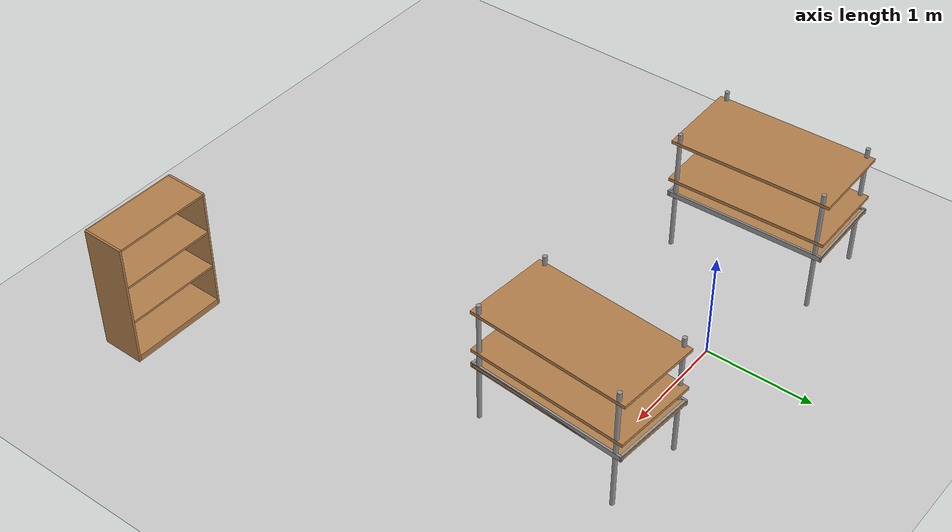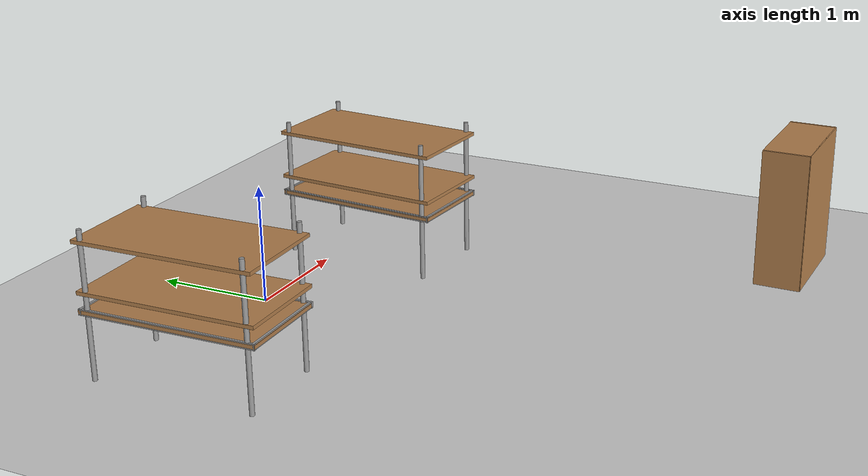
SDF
<sdf version="1.7">
 <world name="default">
  <model name="ground_plane">
   <static>1</static>
   <link name="link">
    <collision name="collision">
     <geometry><plane><normal>0 0 1</normal><size>100 100</size></plane></geometry>
     <surface><friction><ode><mu>100</mu><mu2>50</mu2></ode></friction></surface>
    </collision>
    <visual name="visual">
     <cast_shadows>0</cast_shadows>
     <geometry><plane><normal>0 0 1</normal><size>100 100</size></plane></geometry>
     <material>
      <script><uri>file://media/materials/scripts/gazebo.material</uri><name>Gazebo/Grey</name></script>
     </material>
    </visual>
   </link>
  </model>
  <model name="warehouse_pallet_clone_0">
   <link name="warehouse_pallet::link">
    <pose>0 0 -0 0 -0 1.57</pose>
    <inertial>
     <inertia>
      <ixx>0.0267042</ixx>
      <ixy>0</ixy>
      <ixz>0</ixz>
      <iyy>0.0937875</iyy>
      <iyz>0</iyz>
      <izz>0.120417</izz>
     </inertia>
     <mass>0.5</mass>
    </inertial>
    <visual name="holding1_visual">
     <pose>0 0.39 0.45 0 -0 0</pose>
     <geometry><box><size>1.5 0.02 0.05</size></box></geometry>
     <material>
      <script><uri>file://media/materials/scripts/gazebo.material</uri><name>Gazebo/Grey</name></script>
      <shader type="pixel"><normal_map>__default__</normal_map></shader>
      <ambient>0.3 0.3 0.3 1</ambient>
      <diffuse>0.7 0.7 0.7 1</diffuse>
      <specular>0.01 0.01 0.01 1</specular>
      <emissive>0 0 0 1</emissive>
     </material>
    </visual>
    <visual name="front_left_leg">
     <pose>0.68 0.38 0.5 0 -0 0</pose>
     <geometry><cylinder><radius>0.02</radius><length>1.2</length></cylinder></geometry>
     <material>
      <script><uri>file://media/materials/scripts/gazebo.material</uri><name>Gazebo/Grey</name></script>
      <shader type="pixel"><normal_map>__default__</normal_map></shader>
      <ambient>0.3 0.3 0.3 1</ambient>
      <diffuse>0.7 0.7 0.7 1</diffuse>
      <specular>0.01 0.01 0.01 1</specular>
      <emissive>0 0 0 1</emissive>
     </material>
    </visual>
    <visual name="front_right_leg">
     <pose>0.68 -0.38 0.5 0 -0 0</pose>
     <geometry><cylinder><radius>0.02</radius><length>1.2</length></cylinder></geometry>
     <material>
      <script><uri>file://media/materials/scripts/gazebo.material</uri><name>Gazebo/Grey</name></script>
      <shader type="pixel"><normal_map>__default__</normal_map></shader>
      <ambient>0.3 0.3 0.3 1</ambient>
      <diffuse>0.7 0.7 0.7 1</diffuse>
      <specular>0.01 0.01 0.01 1</specular>
      <emissive>0 0 0 1</emissive>
     </material>
    </visual>
    <visual name="back_right_leg">
     <pose>-0.68 -0.38 0.5 0 -0 0</pose>
     <geometry><cylinder><radius>0.02</radius><length>1.2</length></cylinder></geometry>
     <material>
      <script><uri>file://media/materials/scripts/gazebo.material</uri><name>Gazebo/Grey</name></script>
      <shader type="pixel"><normal_map>__default__</normal_map></shader>
      <ambient>0.3 0.3 0.3 1</ambient>
      <diffuse>0.7 0.7 0.7 1</diffuse>
      <specular>0.01 0.01 0.01 1</specular>
      <emissive>0 0 0 1</emissive>
     </material>
    </visual>
    <visual name="back_left_leg">
     <pose>-0.68 0.38 0.5 0 -0 0</pose>
     <geometry><cylinder><radius>0.02</radius><length>1.2</length></cylinder></geometry>
     <material>
      <script><uri>file://media/materials/scripts/gazebo.material</uri><name>Gazebo/Grey</name></script>
      <shader type="pixel"><normal_map>__default__</normal_map></shader>
      <ambient>0.3 0.3 0.3 1</ambient>
      <diffuse>0.7 0.7 0.7 1</diffuse>
      <specular>0.01 0.01 0.01 1</specular>
      <emissive>0 0 0 1</emissive>
     </material>
    </visual>
    <visual name="visual1">
     <pose>0 0 0.45 0 -0 0</pose>
     <geometry><box><size>1.5 0.8 0.03</size></box></geometry>
     <material>
      <script><uri>file://media/materials/scripts/gazebo.material</uri><name>Gazebo/Wood</name></script>
      <shader type="pixel"><normal_map>__default__</normal_map></shader>
      <ambient>1 1 1 1</ambient>
      <diffuse>1 1 1 1</diffuse>
      <specular>0.2 0.2 0.2 1</specular>
      <emissive>0 0 0 1</emissive>
     </material>
    </visual>
    <visual name="holding2_visual">
     <pose>0 -0.39 0.45 0 -0 0</pose>
     <geometry><box><size>1.5 0.02 0.05</size></box></geometry>
     <material>
      <script><uri>file://media/materials/scripts/gazebo.material</uri><name>Gazebo/Grey</name></script>
      <shader type="pixel"><normal_map>__default__</normal_map></shader>
      <ambient>0.3 0.3 0.3 1</ambient>
      <diffuse>0.7 0.7 0.7 1</diffuse>
      <specular>0.01 0.01 0.01 1</specular>
      <emissive>0 0 0 1</emissive>
     </material>
    </visual>
    <visual name="holding3_visual">
     <pose>0.735 0 0.45 0 -0 1.57</pose>
     <geometry><box><size>0.8 0.02 0.05</size></box></geometry>
     <material>
      <script><uri>file://media/materials/scripts/gazebo.material</uri><name>Gazebo/Grey</name></script>
      <shader type="pixel"><normal_map>__default__</normal_map></shader>
      <ambient>0.3 0.3 0.3 1</ambient>
      <diffuse>0.7 0.7 0.7 1</diffuse>
      <specular>0.01 0.01 0.01 1</specular>
      <emissive>0 0 0 1</emissive>
     </material>
    </visual>
    <visual name="holding4_visual">
     <pose>-0.735 0 0.45 0 -0 1.57</pose>
     <geometry><box><size>0.8 0.02 0.05</size></box></geometry>
     <material>
      <script><uri>file://media/materials/scripts/gazebo.material</uri><name>Gazebo/Grey</name></script>
      <shader type="pixel"><normal_map>__default__</normal_map></shader>
      <ambient>0.3 0.3 0.3 1</ambient>
      <diffuse>0.7 0.7 0.7 1</diffuse>
      <specular>0.01 0.01 0.01 1</specular>
      <emissive>0 0 0 1</emissive>
     </material>
    </visual>
    <visual name="visual2">
     <pose>0 0 0.6 0 -0 0</pose>
     <geometry><box><size>1.5 0.8 0.03</size></box></geometry>
     <material>
      <script><uri>file://media/materials/scripts/gazebo.material</uri><name>Gazebo/Wood</name></script>
      <shader type="pixel"><normal_map>__default__</normal_map></shader>
      <ambient>1 1 1 1</ambient>
      <diffuse>1 1 1 1</diffuse>
      <specular>0.2 0.2 0.2 1</specular>
      <emissive>0 0 0 1</emissive>
     </material>
    </visual>
    <visual name="visual3">
     <pose>0 0 1 0 -0 0</pose>
     <geometry><box><size>1.5 0.8 0.03</size></box></geometry>
     <material>
      <script><uri>file://media/materials/scripts/gazebo.material</uri><name>Gazebo/Wood</name></script>
      <shader type="pixel"><normal_map>__default__</normal_map></shader>
      <ambient>1 1 1 1</ambient>
      <diffuse>1 1 1 1</diffuse>
      <specular>0.2 0.2 0.2 1</specular>
      <emissive>0 0 0 1</emissive>
     </material>
    </visual>
    <collision name="surface1">
     <pose>0 0 0.45 0 -0 0</pose>
     <geometry><box><size>1.5 0.8 0.03</size></box></geometry>
     <surface>
      <friction>
       <ode><mu>20</mu><mu2>20</mu2><fdir1>0 0 0</fdir1><slip1>0</slip1><slip2>0</slip2></ode>
       <torsional>
        <coefficient>1</coefficient>
        <patch_radius>0</patch_radius>
        <surface_radius>0</surface_radius>
        <use_patch_radius>1</use_patch_radius>
        <ode><slip>0</slip></ode>
       </torsional>
      </friction>
      <bounce><restitution_coefficient>0</restitution_coefficient><threshold>1e+06</threshold></bounce>
      <contact>
       <collide_without_contact>0</collide_without_contact>
       <collide_without_contact_bitmask>1</collide_without_contact_bitmask>
       <collide_bitmask>1</collide_bitmask>
       <ode>
        <soft_cfm>0</soft_cfm>
        <soft_erp>0.2</soft_erp>
        <kp>1e+13</kp>
        <kd>1</kd>
        <max_vel>0.01</max_vel>
        <min_depth>0</min_depth>
       </ode>
       <bullet>
        <split_impulse>1</split_impulse>
        <split_impulse_penetration_threshold>-0.01</split_impulse_penetration_threshold>
        <soft_cfm>0</soft_cfm>
        <soft_erp>0.2</soft_erp>
        <kp>1e+13</kp>
        <kd>1</kd>
       </bullet>
      </contact>
     </surface>
    </collision>
    <collision name="holding1_collision">
     <pose>0 0.39 0.45 0 -0 0</pose>
     <geometry><box><size>1.5 0.02 0.05</size></box></geometry>
     <surface>
      <friction>
       <ode><mu>1e+09</mu><mu2>1e+09</mu2><fdir1>0 0 0</fdir1><slip1>0</slip1><slip2>0</slip2></ode>
       <torsional>
        <coefficient>1</coefficient>
        <patch_radius>0</patch_radius>
        <surface_radius>0</surface_radius>
        <use_patch_radius>1</use_patch_radius>
        <ode><slip>0</slip></ode>
       </torsional>
      </friction>
      <bounce><restitution_coefficient>0</restitution_coefficient><threshold>1e+06</threshold></bounce>
      <contact>
       <collide_without_contact>0</collide_without_contact>
       <collide_without_contact_bitmask>1</collide_without_contact_bitmask>
       <collide_bitmask>1</collide_bitmask>
       <ode>
        <soft_cfm>0</soft_cfm>
        <soft_erp>0.2</soft_erp>
        <kp>1e+13</kp>
        <kd>1</kd>
        <max_vel>0.01</max_vel>
        <min_depth>0</min_depth>
       </ode>
       <bullet>
        <split_impulse>1</split_impulse>
        <split_impulse_penetration_threshold>-0.01</split_impulse_penetration_threshold>
        <soft_cfm>0</soft_cfm>
        <soft_erp>0.2</soft_erp>
        <kp>1e+13</kp>
        <kd>1</kd>
       </bullet>
      </contact>
     </surface>
    </collision>
    <collision name="holding2_collision">
     <pose>0 -0.39 0.45 0 -0 0</pose>
     <geometry><box><size>1.5 0.02 0.05</size></box></geometry>
     <surface>
      <friction>
       <ode><mu>1e+09</mu><mu2>1e+09</mu2><fdir1>0 0 0</fdir1><slip1>0</slip1><slip2>0</slip2></ode>
       <torsional>
        <coefficient>1</coefficient>
        <patch_radius>0</patch_radius>
        <surface_radius>0</surface_radius>
        <use_patch_radius>1</use_patch_radius>
        <ode><slip>0</slip></ode>
       </torsional>
      </friction>
      <bounce><restitution_coefficient>0</restitution_coefficient><threshold>1e+06</threshold></bounce>
      <contact>
       <collide_without_contact>0</collide_without_contact>
       <collide_without_contact_bitmask>1</collide_without_contact_bitmask>
       <collide_bitmask>1</collide_bitmask>
       <ode>
        <soft_cfm>0</soft_cfm>
        <soft_erp>0.2</soft_erp>
        <kp>1e+13</kp>
        <kd>1</kd>
        <max_vel>0.01</max_vel>
        <min_depth>0</min_depth>
       </ode>
       <bullet>
        <split_impulse>1</split_impulse>
        <split_impulse_penetration_threshold>-0.01</split_impulse_penetration_threshold>
        <soft_cfm>0</soft_cfm>
        <soft_erp>0.2</soft_erp>
        <kp>1e+13</kp>
        <kd>1</kd>
       </bullet>
      </contact>
     </surface>
    </collision>
    <collision name="holding3_collision">
     <pose>0.735 0 0.45 0 -0 1.57</pose>
     <geometry><box><size>0.8 0.02 0.05</size></box></geometry>
     <surface>
      <friction>
       <ode><mu>1e+09</mu><mu2>1e+09</mu2><fdir1>0 0 0</fdir1><slip1>0</slip1><slip2>0</slip2></ode>
       <torsional>
        <coefficient>1</coefficient>
        <patch_radius>0</patch_radius>
        <surface_radius>0</surface_radius>
        <use_patch_radius>1</use_patch_radius>
        <ode><slip>0</slip></ode>
       </torsional>
      </friction>
      <bounce><restitution_coefficient>0</restitution_coefficient><threshold>1e+06</threshold></bounce>
      <contact>
       <collide_without_contact>0</collide_without_contact>
       <collide_without_contact_bitmask>1</collide_without_contact_bitmask>
       <collide_bitmask>1</collide_bitmask>
       <ode>
        <soft_cfm>0</soft_cfm>
        <soft_erp>0.2</soft_erp>
        <kp>1e+13</kp>
        <kd>1</kd>
        <max_vel>0.01</max_vel>
        <min_depth>0</min_depth>
       </ode>
       <bullet>
        <split_impulse>1</split_impulse>
        <split_impulse_penetration_threshold>-0.01</split_impulse_penetration_threshold>
        <soft_cfm>0</soft_cfm>
        <soft_erp>0.2</soft_erp>
        <kp>1e+13</kp>
        <kd>1</kd>
       </bullet>
      </contact>
     </surface>
    </collision>
    <collision name="holding4_collision">
     <pose>-0.735 0 0.45 0 -0 1.57</pose>
     <geometry><box><size>0.8 0.02 0.05</size></box></geometry>
     <surface>
      <friction>
       <ode><mu>1e+09</mu><mu2>1e+09</mu2><fdir1>0 0 0</fdir1><slip1>0</slip1><slip2>0</slip2></ode>
       <torsional>
        <coefficient>1</coefficient>
        <patch_radius>0</patch_radius>
        <surface_radius>0</surface_radius>
        <use_patch_radius>1</use_patch_radius>
        <ode><slip>0</slip></ode>
       </torsional>
      </friction>
      <bounce><restitution_coefficient>0</restitution_coefficient><threshold>1e+06</threshold></bounce>
      <contact>
       <collide_without_contact>0</collide_without_contact>
       <collide_without_contact_bitmask>1</collide_without_contact_bitmask>
       <collide_bitmask>1</collide_bitmask>
       <ode>
        <soft_cfm>0</soft_cfm>
        <soft_erp>0.2</soft_erp>
        <kp>1e+13</kp>
        <kd>1</kd>
        <max_vel>0.01</max_vel>
        <min_depth>0</min_depth>
       </ode>
       <bullet>
        <split_impulse>1</split_impulse>
        <split_impulse_penetration_threshold>-0.01</split_impulse_penetration_threshold>
        <soft_cfm>0</soft_cfm>
        <soft_erp>0.2</soft_erp>
        <kp>1e+13</kp>
        <kd>1</kd>
       </bullet>
      </contact>
     </surface>
    </collision>
    <collision name="surface3">
     <pose>0 0 1 0 -0 0</pose>
     <geometry><box><size>1.5 0.8 0.03</size></box></geometry>
     <surface>
      <friction>
       <ode><mu>2.5</mu><mu2>2.5</mu2><fdir1>0 0 0</fdir1><slip1>0</slip1><slip2>0</slip2></ode>
       <torsional>
        <coefficient>1</coefficient>
        <patch_radius>0</patch_radius>
        <surface_radius>0</surface_radius>
        <use_patch_radius>1</use_patch_radius>
        <ode><slip>0</slip></ode>
       </torsional>
      </friction>
      <bounce><restitution_coefficient>0</restitution_coefficient><threshold>1e+06</threshold></bounce>
      <contact>
       <collide_without_contact>0</collide_without_contact>
       <collide_without_contact_bitmask>1</collide_without_contact_bitmask>
       <collide_bitmask>1</collide_bitmask>
       <ode>
        <soft_cfm>0</soft_cfm>
        <soft_erp>0.2</soft_erp>
        <kp>1e+13</kp>
        <kd>1</kd>
        <max_vel>0.01</max_vel>
        <min_depth>0</min_depth>
       </ode>
       <bullet>
        <split_impulse>1</split_impulse>
        <split_impulse_penetration_threshold>-0.01</split_impulse_penetration_threshold>
        <soft_cfm>0</soft_cfm>
        <soft_erp>0.2</soft_erp>
        <kp>1e+13</kp>
        <kd>1</kd>
       </bullet>
      </contact>
     </surface>
    </collision>
    <collision name="surface2">
     <pose>0 0 0.6 0 -0 0</pose>
     <geometry><box><size>1.5 0.8 0.03</size></box></geometry>
     <surface>
      <friction>
       <ode><mu>2.5</mu><mu2>2.5</mu2><fdir1>0 0 0</fdir1><slip1>0</slip1><slip2>0</slip2></ode>
       <torsional>
        <coefficient>1</coefficient>
        <patch_radius>0</patch_radius>
        <surface_radius>0</surface_radius>
        <use_patch_radius>1</use_patch_radius>
        <ode><slip>0</slip></ode>
       </torsional>
      </friction>
      <bounce><restitution_coefficient>0</restitution_coefficient><threshold>1e+06</threshold></bounce>
      <contact>
       <collide_without_contact>0</collide_without_contact>
       <collide_without_contact_bitmask>1</collide_without_contact_bitmask>
       <collide_bitmask>1</collide_bitmask>
       <ode>
        <soft_cfm>0</soft_cfm>
        <soft_erp>0.2</soft_erp>
        <kp>1e+13</kp>
        <kd>1</kd>
        <max_vel>0.01</max_vel>
        <min_depth>0</min_depth>
       </ode>
       <bullet>
        <split_impulse>1</split_impulse>
        <split_impulse_penetration_threshold>-0.01</split_impulse_penetration_threshold>
        <soft_cfm>0</soft_cfm>
        <soft_erp>0.2</soft_erp>
        <kp>1e+13</kp>
        <kd>1</kd>
       </bullet>
      </contact>
     </surface>
    </collision>
    <collision name="front_right_leg">
     <pose>0.68 -0.38 0.5 0 -0 0</pose>
     <geometry><cylinder><radius>0.02</radius><length>1</length></cylinder></geometry>
     <surface>
      <friction>
       <ode><mu>1</mu><mu2>1.2</mu2><fdir1>0 0 0</fdir1><slip1>0</slip1><slip2>0</slip2></ode>
       <torsional>
        <coefficient>1</coefficient>
        <patch_radius>0</patch_radius>
        <surface_radius>0</surface_radius>
        <use_patch_radius>1</use_patch_radius>
        <ode><slip>0</slip></ode>
       </torsional>
      </friction>
      <bounce><restitution_coefficient>0</restitution_coefficient><threshold>1e+06</threshold></bounce>
      <contact>
       <collide_without_contact>0</collide_without_contact>
       <collide_without_contact_bitmask>1</collide_without_contact_bitmask>
       <collide_bitmask>1</collide_bitmask>
       <ode>
        <soft_cfm>0</soft_cfm>
        <soft_erp>0.2</soft_erp>
        <kp>1e+13</kp>
        <kd>1</kd>
        <max_vel>0.01</max_vel>
        <min_depth>0</min_depth>
       </ode>
       <bullet>
        <split_impulse>1</split_impulse>
        <split_impulse_penetration_threshold>-0.01</split_impulse_penetration_threshold>
        <soft_cfm>0</soft_cfm>
        <soft_erp>0.2</soft_erp>
        <kp>1e+13</kp>
        <kd>1</kd>
       </bullet>
      </contact>
     </surface>
    </collision>
    <collision name="back_right_leg">
     <pose>-0.68 -0.38 0.5 0 -0 0</pose>
     <geometry><cylinder><radius>0.02</radius><length>1.2</length></cylinder></geometry>
     <surface>
      <friction>
       <ode><mu>1</mu><mu2>1</mu2><fdir1>0 0 0</fdir1><slip1>0</slip1><slip2>0</slip2></ode>
       <torsional>
        <coefficient>1</coefficient>
        <patch_radius>0</patch_radius>
        <surface_radius>0</surface_radius>
        <use_patch_radius>1</use_patch_radius>
        <ode><slip>0</slip></ode>
       </torsional>
      </friction>
      <bounce><restitution_coefficient>0</restitution_coefficient><threshold>1e+06</threshold></bounce>
      <contact>
       <collide_without_contact>0</collide_without_contact>
       <collide_without_contact_bitmask>1</collide_without_contact_bitmask>
       <collide_bitmask>1</collide_bitmask>
       <ode>
        <soft_cfm>0</soft_cfm>
        <soft_erp>0.2</soft_erp>
        <kp>1e+13</kp>
        <kd>1</kd>
        <max_vel>0.01</max_vel>
        <min_depth>0</min_depth>
       </ode>
       <bullet>
        <split_impulse>1</split_impulse>
        <split_impulse_penetration_threshold>-0.01</split_impulse_penetration_threshold>
        <soft_cfm>0</soft_cfm>
        <soft_erp>0.2</soft_erp>
        <kp>1e+13</kp>
        <kd>1</kd>
       </bullet>
      </contact>
     </surface>
    </collision>
    <collision name="front_left_leg">
     <pose>0.68 0.38 0.5 0 -0 0</pose>
     <geometry><cylinder><radius>0.02</radius><length>1.2</length></cylinder></geometry>
     <surface>
      <friction>
       <ode><mu>1</mu><mu2>1</mu2><fdir1>0 0 0</fdir1><slip1>0</slip1><slip2>0</slip2></ode>
       <torsional>
        <coefficient>1</coefficient>
        <patch_radius>0</patch_radius>
        <surface_radius>0</surface_radius>
        <use_patch_radius>1</use_patch_radius>
        <ode><slip>0</slip></ode>
       </torsional>
      </friction>
      <bounce><restitution_coefficient>0</restitution_coefficient><threshold>1e+06</threshold></bounce>
      <contact>
       <collide_without_contact>0</collide_without_contact>
       <collide_without_contact_bitmask>1</collide_without_contact_bitmask>
       <collide_bitmask>1</collide_bitmask>
       <ode>
        <soft_cfm>0</soft_cfm>
        <soft_erp>0.2</soft_erp>
        <kp>1e+13</kp>
        <kd>1</kd>
        <max_vel>0.01</max_vel>
        <min_depth>0</min_depth>
       </ode>
       <bullet>
        <split_impulse>1</split_impulse>
        <split_impulse_penetration_threshold>-0.01</split_impulse_penetration_threshold>
        <soft_cfm>0</soft_cfm>
        <soft_erp>0.2</soft_erp>
        <kp>1e+13</kp>
        <kd>1</kd>
       </bullet>
      </contact>
     </surface>
    </collision>
    <collision name="back_left_leg">
     <pose>-0.68 0.38 0.5 0 -0 0</pose>
     <geometry><cylinder><radius>0.02</radius><length>1.2</length></cylinder></geometry>
     <surface>
      <friction>
       <ode><mu>1</mu><mu2>1</mu2><fdir1>0 0 0</fdir1><slip1>0</slip1><slip2>0</slip2></ode>
       <torsional>
        <coefficient>1</coefficient>
        <patch_radius>0</patch_radius>
        <surface_radius>0</surface_radius>
        <use_patch_radius>1</use_patch_radius>
        <ode><slip>0</slip></ode>
       </torsional>
      </friction>
      <bounce><restitution_coefficient>0</restitution_coefficient><threshold>1e+06</threshold></bounce>
      <contact>
       <collide_without_contact>0</collide_without_contact>
       <collide_without_contact_bitmask>1</collide_without_contact_bitmask>
       <collide_bitmask>1</collide_bitmask>
       <ode>
        <soft_cfm>0</soft_cfm>
        <soft_erp>0.2</soft_erp>
        <kp>1e+13</kp>
        <kd>1</kd>
        <max_vel>0.01</max_vel>
        <min_depth>0</min_depth>
       </ode>
       <bullet>
        <split_impulse>1</split_impulse>
        <split_impulse_penetration_threshold>-0.01</split_impulse_penetration_threshold>
        <soft_cfm>0</soft_cfm>
        <soft_erp>0.2</soft_erp>
        <kp>1e+13</kp>
        <kd>1</kd>
       </bullet>
      </contact>
     </surface>
    </collision>
   </link>
   <static>0</static>
   <pose>-1.36758 -0.325472 0.099996 -7e-06 1.5e-05 0.022491</pose>
  </model>
  <model name="warehouse_pallet_clone_0_clone_2">
   <link name="warehouse_pallet::link">
    <pose>0 0 -0 0 -0 1.57</pose>
    <inertial>
     <inertia>
      <ixx>0.0267042</ixx>
      <ixy>0</ixy>
      <ixz>0</ixz>
      <iyy>0.0937875</iyy>
      <iyz>0</iyz>
      <izz>0.120417</izz>
     </inertia>
     <mass>0.5</mass>
    </inertial>
    <visual name="holding1_visual">
     <pose>0 0.39 0.45 0 -0 0</pose>
     <geometry><box><size>1.5 0.02 0.05</size></box></geometry>
     <material>
      <script><uri>file://media/materials/scripts/gazebo.material</uri><name>Gazebo/Grey</name></script>
      <shader type="pixel"><normal_map>__default__</normal_map></shader>
      <ambient>0.3 0.3 0.3 1</ambient>
      <diffuse>0.7 0.7 0.7 1</diffuse>
      <specular>0.01 0.01 0.01 1</specular>
      <emissive>0 0 0 1</emissive>
     </material>
    </visual>
    <visual name="front_left_leg">
     <pose>0.68 0.38 0.5 0 -0 0</pose>
     <geometry><cylinder><radius>0.02</radius><length>1.2</length></cylinder></geometry>
     <material>
      <script><uri>file://media/materials/scripts/gazebo.material</uri><name>Gazebo/Grey</name></script>
      <shader type="pixel"><normal_map>__default__</normal_map></shader>
      <ambient>0.3 0.3 0.3 1</ambient>
      <diffuse>0.7 0.7 0.7 1</diffuse>
      <specular>0.01 0.01 0.01 1</specular>
      <emissive>0 0 0 1</emissive>
     </material>
    </visual>
    <visual name="front_right_leg">
     <pose>0.68 -0.38 0.5 0 -0 0</pose>
     <geometry><cylinder><radius>0.02</radius><length>1.2</length></cylinder></geometry>
     <material>
      <script><uri>file://media/materials/scripts/gazebo.material</uri><name>Gazebo/Grey</name></script>
      <shader type="pixel"><normal_map>__default__</normal_map></shader>
      <ambient>0.3 0.3 0.3 1</ambient>
      <diffuse>0.7 0.7 0.7 1</diffuse>
      <specular>0.01 0.01 0.01 1</specular>
      <emissive>0 0 0 1</emissive>
     </material>
    </visual>
    <visual name="back_right_leg">
     <pose>-0.68 -0.38 0.5 0 -0 0</pose>
     <geometry><cylinder><radius>0.02</radius><length>1.2</length></cylinder></geometry>
     <material>
      <script><uri>file://media/materials/scripts/gazebo.material</uri><name>Gazebo/Grey</name></script>
      <shader type="pixel"><normal_map>__default__</normal_map></shader>
      <ambient>0.3 0.3 0.3 1</ambient>
      <diffuse>0.7 0.7 0.7 1</diffuse>
      <specular>0.01 0.01 0.01 1</specular>
      <emissive>0 0 0 1</emissive>
     </material>
    </visual>
    <visual name="back_left_leg">
     <pose>-0.68 0.38 0.5 0 -0 0</pose>
     <geometry><cylinder><radius>0.02</radius><length>1.2</length></cylinder></geometry>
     <material>
      <script><uri>file://media/materials/scripts/gazebo.material</uri><name>Gazebo/Grey</name></script>
      <shader type="pixel"><normal_map>__default__</normal_map></shader>
      <ambient>0.3 0.3 0.3 1</ambient>
      <diffuse>0.7 0.7 0.7 1</diffuse>
      <specular>0.01 0.01 0.01 1</specular>
      <emissive>0 0 0 1</emissive>
     </material>
    </visual>
    <visual name="visual1">
     <pose>0 0 0.45 0 -0 0</pose>
     <geometry><box><size>1.5 0.8 0.03</size></box></geometry>
     <material>
      <script><uri>file://media/materials/scripts/gazebo.material</uri><name>Gazebo/Wood</name></script>
      <shader type="pixel"><normal_map>__default__</normal_map></shader>
      <ambient>1 1 1 1</ambient>
      <diffuse>1 1 1 1</diffuse>
      <specular>0.2 0.2 0.2 1</specular>
      <emissive>0 0 0 1</emissive>
     </material>
    </visual>
    <visual name="holding2_visual">
     <pose>0 -0.39 0.45 0 -0 0</pose>
     <geometry><box><size>1.5 0.02 0.05</size></box></geometry>
     <material>
      <script><uri>file://media/materials/scripts/gazebo.material</uri><name>Gazebo/Grey</name></script>
      <shader type="pixel"><normal_map>__default__</normal_map></shader>
      <ambient>0.3 0.3 0.3 1</ambient>
      <diffuse>0.7 0.7 0.7 1</diffuse>
      <specular>0.01 0.01 0.01 1</specular>
      <emissive>0 0 0 1</emissive>
     </material>
    </visual>
    <visual name="holding3_visual">
     <pose>0.735 0 0.45 0 -0 1.57</pose>
     <geometry><box><size>0.8 0.02 0.05</size></box></geometry>
     <material>
      <script><uri>file://media/materials/scripts/gazebo.material</uri><name>Gazebo/Grey</name></script>
      <shader type="pixel"><normal_map>__default__</normal_map></shader>
      <ambient>0.3 0.3 0.3 1</ambient>
      <diffuse>0.7 0.7 0.7 1</diffuse>
      <specular>0.01 0.01 0.01 1</specular>
      <emissive>0 0 0 1</emissive>
     </material>
    </visual>
    <visual name="holding4_visual">
     <pose>-0.735 0 0.45 0 -0 1.57</pose>
     <geometry><box><size>0.8 0.02 0.05</size></box></geometry>
     <material>
      <script><uri>file://media/materials/scripts/gazebo.material</uri><name>Gazebo/Grey</name></script>
      <shader type="pixel"><normal_map>__default__</normal_map></shader>
      <ambient>0.3 0.3 0.3 1</ambient>
      <diffuse>0.7 0.7 0.7 1</diffuse>
      <specular>0.01 0.01 0.01 1</specular>
      <emissive>0 0 0 1</emissive>
     </material>
    </visual>
    <visual name="visual2">
     <pose>0 0 0.6 0 -0 0</pose>
     <geometry><box><size>1.5 0.8 0.03</size></box></geometry>
     <material>
      <script><uri>file://media/materials/scripts/gazebo.material</uri><name>Gazebo/Wood</name></script>
      <shader type="pixel"><normal_map>__default__</normal_map></shader>
      <ambient>1 1 1 1</ambient>
      <diffuse>1 1 1 1</diffuse>
      <specular>0.2 0.2 0.2 1</specular>
      <emissive>0 0 0 1</emissive>
     </material>
    </visual>
    <visual name="visual3">
     <pose>0 0 1 0 -0 0</pose>
     <geometry><box><size>1.5 0.8 0.03</size></box></geometry>
     <material>
      <script><uri>file://media/materials/scripts/gazebo.material</uri><name>Gazebo/Wood</name></script>
      <shader type="pixel"><normal_map>__default__</normal_map></shader>
      <ambient>1 1 1 1</ambient>
      <diffuse>1 1 1 1</diffuse>
      <specular>0.2 0.2 0.2 1</specular>
      <emissive>0 0 0 1</emissive>
     </material>
    </visual>
    <collision name="surface1">
     <pose>0 0 0.45 0 -0 0</pose>
     <geometry><box><size>1.5 0.8 0.03</size></box></geometry>
     <surface>
      <friction>
       <ode><mu>20</mu><mu2>20</mu2><fdir1>0 0 0</fdir1><slip1>0</slip1><slip2>0</slip2></ode>
       <torsional>
        <coefficient>1</coefficient>
        <patch_radius>0</patch_radius>
        <surface_radius>0</surface_radius>
        <use_patch_radius>1</use_patch_radius>
        <ode><slip>0</slip></ode>
       </torsional>
      </friction>
      <bounce><restitution_coefficient>0</restitution_coefficient><threshold>1e+06</threshold></bounce>
      <contact>
       <collide_without_contact>0</collide_without_contact>
       <collide_without_contact_bitmask>1</collide_without_contact_bitmask>
       <collide_bitmask>1</collide_bitmask>
       <ode>
        <soft_cfm>0</soft_cfm>
        <soft_erp>0.2</soft_erp>
        <kp>1e+13</kp>
        <kd>1</kd>
        <max_vel>0.01</max_vel>
        <min_depth>0</min_depth>
       </ode>
       <bullet>
        <split_impulse>1</split_impulse>
        <split_impulse_penetration_threshold>-0.01</split_impulse_penetration_threshold>
        <soft_cfm>0</soft_cfm>
        <soft_erp>0.2</soft_erp>
        <kp>1e+13</kp>
        <kd>1</kd>
       </bullet>
      </contact>
     </surface>
    </collision>
    <collision name="holding1_collision">
     <pose>0 0.39 0.45 0 -0 0</pose>
     <geometry><box><size>1.5 0.02 0.05</size></box></geometry>
     <surface>
      <friction>
       <ode><mu>1e+09</mu><mu2>1e+09</mu2><fdir1>0 0 0</fdir1><slip1>0</slip1><slip2>0</slip2></ode>
       <torsional>
        <coefficient>1</coefficient>
        <patch_radius>0</patch_radius>
        <surface_radius>0</surface_radius>
        <use_patch_radius>1</use_patch_radius>
        <ode><slip>0</slip></ode>
       </torsional>
      </friction>
      <bounce><restitution_coefficient>0</restitution_coefficient><threshold>1e+06</threshold></bounce>
      <contact>
       <collide_without_contact>0</collide_without_contact>
       <collide_without_contact_bitmask>1</collide_without_contact_bitmask>
       <collide_bitmask>1</collide_bitmask>
       <ode>
        <soft_cfm>0</soft_cfm>
        <soft_erp>0.2</soft_erp>
        <kp>1e+13</kp>
        <kd>1</kd>
        <max_vel>0.01</max_vel>
        <min_depth>0</min_depth>
       </ode>
       <bullet>
        <split_impulse>1</split_impulse>
        <split_impulse_penetration_threshold>-0.01</split_impulse_penetration_threshold>
        <soft_cfm>0</soft_cfm>
        <soft_erp>0.2</soft_erp>
        <kp>1e+13</kp>
        <kd>1</kd>
       </bullet>
      </contact>
     </surface>
    </collision>
    <collision name="holding2_collision">
     <pose>0 -0.39 0.45 0 -0 0</pose>
     <geometry><box><size>1.5 0.02 0.05</size></box></geometry>
     <surface>
      <friction>
       <ode><mu>1e+09</mu><mu2>1e+09</mu2><fdir1>0 0 0</fdir1><slip1>0</slip1><slip2>0</slip2></ode>
       <torsional>
        <coefficient>1</coefficient>
        <patch_radius>0</patch_radius>
        <surface_radius>0</surface_radius>
        <use_patch_radius>1</use_patch_radius>
        <ode><slip>0</slip></ode>
       </torsional>
      </friction>
      <bounce><restitution_coefficient>0</restitution_coefficient><threshold>1e+06</threshold></bounce>
      <contact>
       <collide_without_contact>0</collide_without_contact>
       <collide_without_contact_bitmask>1</collide_without_contact_bitmask>
       <collide_bitmask>1</collide_bitmask>
       <ode>
        <soft_cfm>0</soft_cfm>
        <soft_erp>0.2</soft_erp>
        <kp>1e+13</kp>
        <kd>1</kd>
        <max_vel>0.01</max_vel>
        <min_depth>0</min_depth>
       </ode>
       <bullet>
        <split_impulse>1</split_impulse>
        <split_impulse_penetration_threshold>-0.01</split_impulse_penetration_threshold>
        <soft_cfm>0</soft_cfm>
        <soft_erp>0.2</soft_erp>
        <kp>1e+13</kp>
        <kd>1</kd>
       </bullet>
      </contact>
     </surface>
    </collision>
    <collision name="holding3_collision">
     <pose>0.735 0 0.45 0 -0 1.57</pose>
     <geometry><box><size>0.8 0.02 0.05</size></box></geometry>
     <surface>
      <friction>
       <ode><mu>1e+09</mu><mu2>1e+09</mu2><fdir1>0 0 0</fdir1><slip1>0</slip1><slip2>0</slip2></ode>
       <torsional>
        <coefficient>1</coefficient>
        <patch_radius>0</patch_radius>
        <surface_radius>0</surface_radius>
        <use_patch_radius>1</use_patch_radius>
        <ode><slip>0</slip></ode>
       </torsional>
      </friction>
      <bounce><restitution_coefficient>0</restitution_coefficient><threshold>1e+06</threshold></bounce>
      <contact>
       <collide_without_contact>0</collide_without_contact>
       <collide_without_contact_bitmask>1</collide_without_contact_bitmask>
       <collide_bitmask>1</collide_bitmask>
       <ode>
        <soft_cfm>0</soft_cfm>
        <soft_erp>0.2</soft_erp>
        <kp>1e+13</kp>
        <kd>1</kd>
        <max_vel>0.01</max_vel>
        <min_depth>0</min_depth>
       </ode>
       <bullet>
        <split_impulse>1</split_impulse>
        <split_impulse_penetration_threshold>-0.01</split_impulse_penetration_threshold>
        <soft_cfm>0</soft_cfm>
        <soft_erp>0.2</soft_erp>
        <kp>1e+13</kp>
        <kd>1</kd>
       </bullet>
      </contact>
     </surface>
    </collision>
    <collision name="holding4_collision">
     <pose>-0.735 0 0.45 0 -0 1.57</pose>
     <geometry><box><size>0.8 0.02 0.05</size></box></geometry>
     <surface>
      <friction>
       <ode><mu>1e+09</mu><mu2>1e+09</mu2><fdir1>0 0 0</fdir1><slip1>0</slip1><slip2>0</slip2></ode>
       <torsional>
        <coefficient>1</coefficient>
        <patch_radius>0</patch_radius>
        <surface_radius>0</surface_radius>
        <use_patch_radius>1</use_patch_radius>
        <ode><slip>0</slip></ode>
       </torsional>
      </friction>
      <bounce><restitution_coefficient>0</restitution_coefficient><threshold>1e+06</threshold></bounce>
      <contact>
       <collide_without_contact>0</collide_without_contact>
       <collide_without_contact_bitmask>1</collide_without_contact_bitmask>
       <collide_bitmask>1</collide_bitmask>
       <ode>
        <soft_cfm>0</soft_cfm>
        <soft_erp>0.2</soft_erp>
        <kp>1e+13</kp>
        <kd>1</kd>
        <max_vel>0.01</max_vel>
        <min_depth>0</min_depth>
       </ode>
       <bullet>
        <split_impulse>1</split_impulse>
        <split_impulse_penetration_threshold>-0.01</split_impulse_penetration_threshold>
        <soft_cfm>0</soft_cfm>
        <soft_erp>0.2</soft_erp>
        <kp>1e+13</kp>
        <kd>1</kd>
       </bullet>
      </contact>
     </surface>
    </collision>
    <collision name="surface3">
     <pose>0 0 1 0 -0 0</pose>
     <geometry><box><size>1.5 0.8 0.03</size></box></geometry>
     <surface>
      <friction>
       <ode><mu>2.5</mu><mu2>2.5</mu2><fdir1>0 0 0</fdir1><slip1>0</slip1><slip2>0</slip2></ode>
       <torsional>
        <coefficient>1</coefficient>
        <patch_radius>0</patch_radius>
        <surface_radius>0</surface_radius>
        <use_patch_radius>1</use_patch_radius>
        <ode><slip>0</slip></ode>
       </torsional>
      </friction>
      <bounce><restitution_coefficient>0</restitution_coefficient><threshold>1e+06</threshold></bounce>
      <contact>
       <collide_without_contact>0</collide_without_contact>
       <collide_without_contact_bitmask>1</collide_without_contact_bitmask>
       <collide_bitmask>1</collide_bitmask>
       <ode>
        <soft_cfm>0</soft_cfm>
        <soft_erp>0.2</soft_erp>
        <kp>1e+13</kp>
        <kd>1</kd>
        <max_vel>0.01</max_vel>
        <min_depth>0</min_depth>
       </ode>
       <bullet>
        <split_impulse>1</split_impulse>
        <split_impulse_penetration_threshold>-0.01</split_impulse_penetration_threshold>
        <soft_cfm>0</soft_cfm>
        <soft_erp>0.2</soft_erp>
        <kp>1e+13</kp>
        <kd>1</kd>
       </bullet>
      </contact>
     </surface>
    </collision>
    <collision name="surface2">
     <pose>0 0 0.6 0 -0 0</pose>
     <geometry><box><size>1.5 0.8 0.03</size></box></geometry>
     <surface>
      <friction>
       <ode><mu>2.5</mu><mu2>2.5</mu2><fdir1>0 0 0</fdir1><slip1>0</slip1><slip2>0</slip2></ode>
       <torsional>
        <coefficient>1</coefficient>
        <patch_radius>0</patch_radius>
        <surface_radius>0</surface_radius>
        <use_patch_radius>1</use_patch_radius>
        <ode><slip>0</slip></ode>
       </torsional>
      </friction>
      <bounce><restitution_coefficient>0</restitution_coefficient><threshold>1e+06</threshold></bounce>
      <contact>
       <collide_without_contact>0</collide_without_contact>
       <collide_without_contact_bitmask>1</collide_without_contact_bitmask>
       <collide_bitmask>1</collide_bitmask>
       <ode>
        <soft_cfm>0</soft_cfm>
        <soft_erp>0.2</soft_erp>
        <kp>1e+13</kp>
        <kd>1</kd>
        <max_vel>0.01</max_vel>
        <min_depth>0</min_depth>
       </ode>
       <bullet>
        <split_impulse>1</split_impulse>
        <split_impulse_penetration_threshold>-0.01</split_impulse_penetration_threshold>
        <soft_cfm>0</soft_cfm>
        <soft_erp>0.2</soft_erp>
        <kp>1e+13</kp>
        <kd>1</kd>
       </bullet>
      </contact>
     </surface>
    </collision>
    <collision name="front_right_leg">
     <pose>0.68 -0.38 0.5 0 -0 0</pose>
     <geometry><cylinder><radius>0.02</radius><length>1</length></cylinder></geometry>
     <surface>
      <friction>
       <ode><mu>1</mu><mu2>1.2</mu2><fdir1>0 0 0</fdir1><slip1>0</slip1><slip2>0</slip2></ode>
       <torsional>
        <coefficient>1</coefficient>
        <patch_radius>0</patch_radius>
        <surface_radius>0</surface_radius>
        <use_patch_radius>1</use_patch_radius>
        <ode><slip>0</slip></ode>
       </torsional>
      </friction>
      <bounce><restitution_coefficient>0</restitution_coefficient><threshold>1e+06</threshold></bounce>
      <contact>
       <collide_without_contact>0</collide_without_contact>
       <collide_without_contact_bitmask>1</collide_without_contact_bitmask>
       <collide_bitmask>1</collide_bitmask>
       <ode>
        <soft_cfm>0</soft_cfm>
        <soft_erp>0.2</soft_erp>
        <kp>1e+13</kp>
        <kd>1</kd>
        <max_vel>0.01</max_vel>
        <min_depth>0</min_depth>
       </ode>
       <bullet>
        <split_impulse>1</split_impulse>
        <split_impulse_penetration_threshold>-0.01</split_impulse_penetration_threshold>
        <soft_cfm>0</soft_cfm>
        <soft_erp>0.2</soft_erp>
        <kp>1e+13</kp>
        <kd>1</kd>
       </bullet>
      </contact>
     </surface>
    </collision>
    <collision name="back_right_leg">
     <pose>-0.68 -0.38 0.5 0 -0 0</pose>
     <geometry><cylinder><radius>0.02</radius><length>1.2</length></cylinder></geometry>
     <surface>
      <friction>
       <ode><mu>1</mu><mu2>1</mu2><fdir1>0 0 0</fdir1><slip1>0</slip1><slip2>0</slip2></ode>
       <torsional>
        <coefficient>1</coefficient>
        <patch_radius>0</patch_radius>
        <surface_radius>0</surface_radius>
        <use_patch_radius>1</use_patch_radius>
        <ode><slip>0</slip></ode>
       </torsional>
      </friction>
      <bounce><restitution_coefficient>0</restitution_coefficient><threshold>1e+06</threshold></bounce>
      <contact>
       <collide_without_contact>0</collide_without_contact>
       <collide_without_contact_bitmask>1</collide_without_contact_bitmask>
       <collide_bitmask>1</collide_bitmask>
       <ode>
        <soft_cfm>0</soft_cfm>
        <soft_erp>0.2</soft_erp>
        <kp>1e+13</kp>
        <kd>1</kd>
        <max_vel>0.01</max_vel>
        <min_depth>0</min_depth>
       </ode>
       <bullet>
        <split_impulse>1</split_impulse>
        <split_impulse_penetration_threshold>-0.01</split_impulse_penetration_threshold>
        <soft_cfm>0</soft_cfm>
        <soft_erp>0.2</soft_erp>
        <kp>1e+13</kp>
        <kd>1</kd>
       </bullet>
      </contact>
     </surface>
    </collision>
    <collision name="front_left_leg">
     <pose>0.68 0.38 0.5 0 -0 0</pose>
     <geometry><cylinder><radius>0.02</radius><length>1.2</length></cylinder></geometry>
     <surface>
      <friction>
       <ode><mu>1</mu><mu2>1</mu2><fdir1>0 0 0</fdir1><slip1>0</slip1><slip2>0</slip2></ode>
       <torsional>
        <coefficient>1</coefficient>
        <patch_radius>0</patch_radius>
        <surface_radius>0</surface_radius>
        <use_patch_radius>1</use_patch_radius>
        <ode><slip>0</slip></ode>
       </torsional>
      </friction>
      <bounce><restitution_coefficient>0</restitution_coefficient><threshold>1e+06</threshold></bounce>
      <contact>
       <collide_without_contact>0</collide_without_contact>
       <collide_without_contact_bitmask>1</collide_without_contact_bitmask>
       <collide_bitmask>1</collide_bitmask>
       <ode>
        <soft_cfm>0</soft_cfm>
        <soft_erp>0.2</soft_erp>
        <kp>1e+13</kp>
        <kd>1</kd>
        <max_vel>0.01</max_vel>
        <min_depth>0</min_depth>
       </ode>
       <bullet>
        <split_impulse>1</split_impulse>
        <split_impulse_penetration_threshold>-0.01</split_impulse_penetration_threshold>
        <soft_cfm>0</soft_cfm>
        <soft_erp>0.2</soft_erp>
        <kp>1e+13</kp>
        <kd>1</kd>
       </bullet>
      </contact>
     </surface>
    </collision>
    <collision name="back_left_leg">
     <pose>-0.68 0.38 0.5 0 -0 0</pose>
     <geometry><cylinder><radius>0.02</radius><length>1.2</length></cylinder></geometry>
     <surface>
      <friction>
       <ode><mu>1</mu><mu2>1</mu2><fdir1>0 0 0</fdir1><slip1>0</slip1><slip2>0</slip2></ode>
       <torsional>
        <coefficient>1</coefficient>
        <patch_radius>0</patch_radius>
        <surface_radius>0</surface_radius>
        <use_patch_radius>1</use_patch_radius>
        <ode><slip>0</slip></ode>
       </torsional>
      </friction>
      <bounce><restitution_coefficient>0</restitution_coefficient><threshold>1e+06</threshold></bounce>
      <contact>
       <collide_without_contact>0</collide_without_contact>
       <collide_without_contact_bitmask>1</collide_without_contact_bitmask>
       <collide_bitmask>1</collide_bitmask>
       <ode>
        <soft_cfm>0</soft_cfm>
        <soft_erp>0.2</soft_erp>
        <kp>1e+13</kp>
        <kd>1</kd>
        <max_vel>0.01</max_vel>
        <min_depth>0</min_depth>
       </ode>
       <bullet>
        <split_impulse>1</split_impulse>
        <split_impulse_penetration_threshold>-0.01</split_impulse_penetration_threshold>
        <soft_cfm>0</soft_cfm>
        <soft_erp>0.2</soft_erp>
        <kp>1e+13</kp>
        <kd>1</kd>
       </bullet>
      </contact>
     </surface>
    </collision>
   </link>
   <static>0</static>
   <pose>1.41195 -0.319875 0.099964 -5.9e-05 0.000213 -0.074202</pose>
  </model>
  <model name="bookshelf_0_clone_clone">
   <static>1</static>
   <link name="link">
    <inertial><mass>1</mass></inertial>
    <collision name="back">
     <pose>0 0.005 0.6 0 -0 0</pose>
     <geometry><box><size>0.9 0.01 1.2</size></box></geometry>
    </collision>
    <visual name="visual1">
     <pose>0 0.005 0.6 0 -0 0</pose>
     <geometry><box><size>0.9 0.01 1.2</size></box></geometry>
     <material>
      <script><uri>file://media/materials/scripts/gazebo.material</uri><name>Gazebo/Wood</name></script>
     </material>
    </visual>
    <collision name="left_side">
     <pose>0.45 -0.195 0.6 0 -0 0</pose>
     <geometry><box><size>0.02 0.4 1.2</size></box></geometry>
    </collision>
    <visual name="visual2">
     <pose>0.45 -0.195 0.6 0 -0 0</pose>
     <geometry><box><size>0.02 0.4 1.2</size></box></geometry>
     <material>
      <script><uri>file://media/materials/scripts/gazebo.material</uri><name>Gazebo/Wood</name></script>
     </material>
    </visual>
    <collision name="right_side">
     <pose>-0.45 -0.195 0.6 0 -0 0</pose>
     <geometry><box><size>0.02 0.4 1.2</size></box></geometry>
    </collision>
    <visual name="visual3">
     <pose>-0.45 -0.195 0.6 0 -0 0</pose>
     <geometry><box><size>0.02 0.4 1.2</size></box></geometry>
     <material>
      <script><uri>file://media/materials/scripts/gazebo.material</uri><name>Gazebo/Wood</name></script>
     </material>
    </visual>
    <collision name="bottom">
     <pose>0 -0.195 0.03 0 -0 0</pose>
     <geometry><box><size>0.88 0.4 0.06</size></box></geometry>
    </collision>
    <visual name="visual4">
     <pose>0 -0.195 0.03 0 -0 0</pose>
     <geometry><box><size>0.88 0.4 0.06</size></box></geometry>
     <material>
      <script><uri>file://media/materials/scripts/gazebo.material</uri><name>Gazebo/Wood</name></script>
     </material>
    </visual>
    <collision name="top">
     <pose>0 -0.195 1.19 0 -0 0</pose>
     <geometry><box><size>0.88 0.4 0.02</size></box></geometry>
    </collision>
    <visual name="visual5">
     <pose>0 -0.195 1.19 0 -0 0</pose>
     <geometry><box><size>0.88 0.4 0.02</size></box></geometry>
     <material>
      <script><uri>file://media/materials/scripts/gazebo.material</uri><name>Gazebo/Wood</name></script>
     </material>
    </visual>
    <collision name="low_shelf">
     <pose>0 -0.195 0.43 0 -0 0</pose>
     <geometry><box><size>0.88 0.4 0.02</size></box></geometry>
    </collision>
    <visual name="visual6">
     <pose>0 -0.195 0.43 0 -0 0</pose>
     <geometry><box><size>0.88 0.4 0.02</size></box></geometry>
     <material>
      <script><uri>file://media/materials/scripts/gazebo.material</uri><name>Gazebo/Wood</name></script>
     </material>
    </visual>
    <collision name="high_shelf">
     <pose>0 -0.195 0.8 0 -0 0</pose>
     <geometry><box><size>0.88 0.4 0.02</size></box></geometry>
    </collision>
    <visual name="visual7">
     <pose>0 -0.195 0.8 0 -0 0</pose>
     <geometry><box><size>0.88 0.4 0.02</size></box></geometry>
     <material>
      <script><uri>file://media/materials/scripts/gazebo.material</uri><name>Gazebo/Wood</name></script>
     </material>
    </visual>
   </link>
   <pose>2.50374 -4 0 0 -0 3.12812</pose>
  </model>
 </world>
</sdf>
